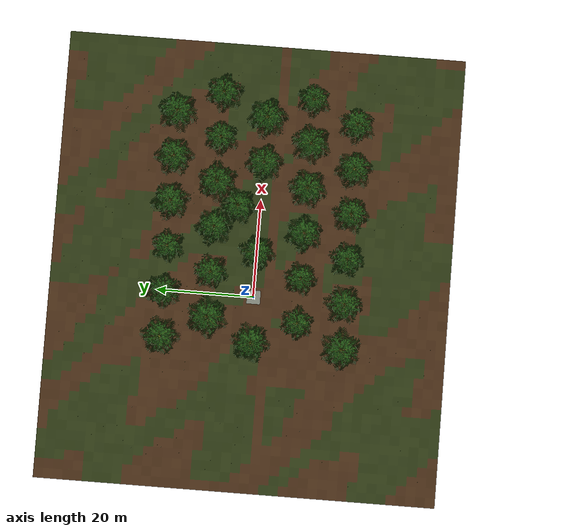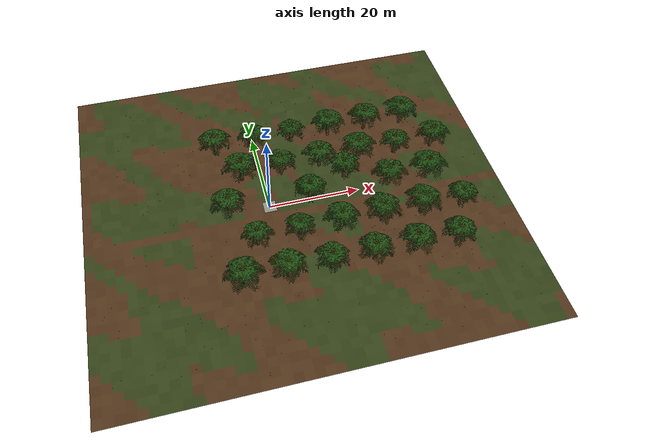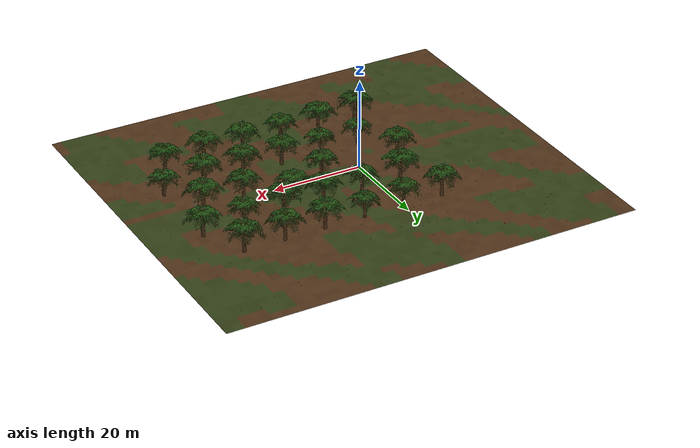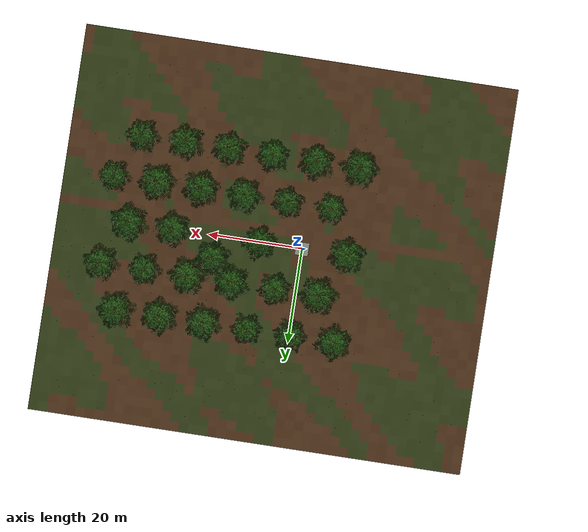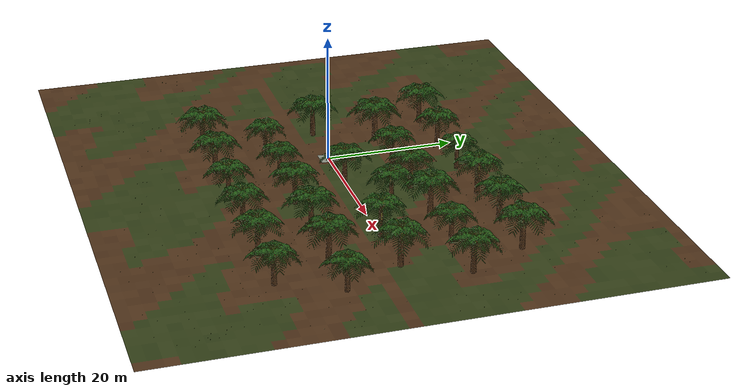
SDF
<sdf version="1.9">
 <world name="polinasi_palm_farm">
  <physics name="1ms" type="ignore">
   <max_step_size>.001</max_step_size>
   <real_time_factor>1</real_time_factor>
  </physics>
  <plugin filename="gz-sim-physics-system" name="gz::sim::systems::Physics"/>
  <plugin filename="gz-sim-sensors-system" name="gz::sim::systems::Sensors">
   <render_engine>ogre2</render_engine>
  </plugin>
  <plugin filename="gz-sim-imu-system" name="gz::sim::systems::Imu"/>
  <plugin filename="gz-sim-user-commands-system" name="gz::sim::systems::UserCommands"/>
  <plugin filename="gz-sim-scene-broadcaster-system" name="gz::sim::systems::SceneBroadcaster"/>
  <scene><ambient>.55 .55 .55 1</ambient><background>.58 .76 .91 1</background><shadows>true</shadows></scene>
  <light name="tropical_sun" type="directional">
   <pose>0 0 30 0 0 0</pose>
   <diffuse>.95 .91 .82 1</diffuse>
   <specular>.15 .15 .15 1</specular>
   <direction>-.4 -.35 -1</direction>
  </light>
  <model name="soil_and_grass">
   <static>true</static>
   <link name="surface">
    <visual name="visual">
     <geometry><mesh><uri>model://palm_farm/meshes/ground.dae</uri><scale>1.0 1.0 1.0</scale></mesh></geometry>
    </visual>
    <collision name="collision">
     <geometry><mesh><uri>model://palm_farm/meshes/ground.dae</uri><scale>1.0 1.0 1.0</scale></mesh></geometry>
    </collision>
    <collision name="solid_ground">
     <pose>5 0 -0.25 0 0 0</pose>
     <geometry><box><size>92 82 0.5</size></box></geometry>
    </collision>
   </link>
  </model>
  <model name="oil_palm_00">
   <static>true</static>
   <pose>9.0 0.0 0 0 0 -0.74757</pose>
   <link name="surface">
    <visual name="visual">
     <geometry><mesh><uri>model://palm_farm/meshes/palm.dae</uri><scale>1.0 1.0 1.0</scale></mesh></geometry>
    </visual>
    <collision name="collision">
     <geometry><mesh><uri>model://palm_farm/meshes/palm.dae</uri><scale>1.0 1.0 1.0</scale></mesh></geometry>
    </collision>
   </link>
  </model>
  <model name="oil_palm_01">
   <static>true</static>
   <pose>18.0 4.5 0 0 0 -1.69194</pose>
   <link name="surface">
    <visual name="visual">
     <geometry><mesh><uri>model://palm_farm/meshes/palm.dae</uri><scale>1.0 1.0 1.0</scale></mesh></geometry>
    </visual>
    <collision name="collision">
     <geometry><mesh><uri>model://palm_farm/meshes/palm.dae</uri><scale>1.0 1.0 1.0</scale></mesh></geometry>
    </collision>
   </link>
  </model>
  <model name="oil_palm_02">
   <static>true</static>
   <pose>-9.0 -18.0 0 0 0 -2.09835</pose>
   <link name="surface">
    <visual name="visual">
     <geometry>
      <mesh>
       <uri>model://palm_farm/meshes/palm.dae</uri>
       <scale>1.1084583586931782 1.1084583586931782 1.1084583586931782</scale>
      </mesh>
     </geometry>
    </visual>
    <collision name="collision">
     <geometry>
      <mesh>
       <uri>model://palm_farm/meshes/palm.dae</uri>
       <scale>1.1084583586931782 1.1084583586931782 1.1084583586931782</scale>
      </mesh>
     </geometry>
    </collision>
   </link>
  </model>
  <model name="oil_palm_03">
   <static>true</static>
   <pose>0.0 -18.0 0 0 0 0.48971</pose>
   <link name="surface">
    <visual name="visual">
     <geometry>
      <mesh>
       <uri>model://palm_farm/meshes/palm.dae</uri>
       <scale>1.0525331643288167 1.0525331643288167 1.0525331643288167</scale>
      </mesh>
     </geometry>
    </visual>
    <collision name="collision">
     <geometry>
      <mesh>
       <uri>model://palm_farm/meshes/palm.dae</uri>
       <scale>1.0525331643288167 1.0525331643288167 1.0525331643288167</scale>
      </mesh>
     </geometry>
    </collision>
   </link>
  </model>
  <model name="oil_palm_04">
   <static>true</static>
   <pose>9.0 -18.0 0 0 0 0.33338</pose>
   <link name="surface">
    <visual name="visual">
     <geometry>
      <mesh>
       <uri>model://palm_farm/meshes/palm.dae</uri>
       <scale>0.9758860159888182 0.9758860159888182 0.9758860159888182</scale>
      </mesh>
     </geometry>
    </visual>
    <collision name="collision">
     <geometry>
      <mesh>
       <uri>model://palm_farm/meshes/palm.dae</uri>
       <scale>0.9758860159888182 0.9758860159888182 0.9758860159888182</scale>
      </mesh>
     </geometry>
    </collision>
   </link>
  </model>
  <model name="oil_palm_05">
   <static>true</static>
   <pose>18.0 -18.0 0 0 0 1.45534</pose>
   <link name="surface">
    <visual name="visual">
     <geometry>
      <mesh>
       <uri>model://palm_farm/meshes/palm.dae</uri>
       <scale>1.0241069897437993 1.0241069897437993 1.0241069897437993</scale>
      </mesh>
     </geometry>
    </visual>
    <collision name="collision">
     <geometry>
      <mesh>
       <uri>model://palm_farm/meshes/palm.dae</uri>
       <scale>1.0241069897437993 1.0241069897437993 1.0241069897437993</scale>
      </mesh>
     </geometry>
    </collision>
   </link>
  </model>
  <model name="oil_palm_06">
   <static>true</static>
   <pose>27.0 -18.0 0 0 0 1.76689</pose>
   <link name="surface">
    <visual name="visual">
     <geometry>
      <mesh>
       <uri>model://palm_farm/meshes/palm.dae</uri>
       <scale>1.0453952430893554 1.0453952430893554 1.0453952430893554</scale>
      </mesh>
     </geometry>
    </visual>
    <collision name="collision">
     <geometry>
      <mesh>
       <uri>model://palm_farm/meshes/palm.dae</uri>
       <scale>1.0453952430893554 1.0453952430893554 1.0453952430893554</scale>
      </mesh>
     </geometry>
    </collision>
   </link>
  </model>
  <model name="oil_palm_07">
   <static>true</static>
   <pose>36.0 -18.0 0 0 0 2.13187</pose>
   <link name="surface">
    <visual name="visual">
     <geometry>
      <mesh>
       <uri>model://palm_farm/meshes/palm.dae</uri>
       <scale>0.9898486277252518 0.9898486277252518 0.9898486277252518</scale>
      </mesh>
     </geometry>
    </visual>
    <collision name="collision">
     <geometry>
      <mesh>
       <uri>model://palm_farm/meshes/palm.dae</uri>
       <scale>0.9898486277252518 0.9898486277252518 0.9898486277252518</scale>
      </mesh>
     </geometry>
    </collision>
   </link>
  </model>
  <model name="oil_palm_08">
   <static>true</static>
   <pose>-4.5 -9.0 0 0 0 -2.16739</pose>
   <link name="surface">
    <visual name="visual">
     <geometry>
      <mesh>
       <uri>model://palm_farm/meshes/palm.dae</uri>
       <scale>0.9174587643518503 0.9174587643518503 0.9174587643518503</scale>
      </mesh>
     </geometry>
    </visual>
    <collision name="collision">
     <geometry>
      <mesh>
       <uri>model://palm_farm/meshes/palm.dae</uri>
       <scale>0.9174587643518503 0.9174587643518503 0.9174587643518503</scale>
      </mesh>
     </geometry>
    </collision>
   </link>
  </model>
  <model name="oil_palm_09">
   <static>true</static>
   <pose>4.5 -9.0 0 0 0 1.40222</pose>
   <link name="surface">
    <visual name="visual">
     <geometry>
      <mesh>
       <uri>model://palm_farm/meshes/palm.dae</uri>
       <scale>0.9218776949076226 0.9218776949076226 0.9218776949076226</scale>
      </mesh>
     </geometry>
    </visual>
    <collision name="collision">
     <geometry>
      <mesh>
       <uri>model://palm_farm/meshes/palm.dae</uri>
       <scale>0.9218776949076226 0.9218776949076226 0.9218776949076226</scale>
      </mesh>
     </geometry>
    </collision>
   </link>
  </model>
  <model name="oil_palm_10">
   <static>true</static>
   <pose>13.5 -9.0 0 0 0 0.97173</pose>
   <link name="surface">
    <visual name="visual">
     <geometry>
      <mesh>
       <uri>model://palm_farm/meshes/palm.dae</uri>
       <scale>1.0351933597471328 1.0351933597471328 1.0351933597471328</scale>
      </mesh>
     </geometry>
    </visual>
    <collision name="collision">
     <geometry>
      <mesh>
       <uri>model://palm_farm/meshes/palm.dae</uri>
       <scale>1.0351933597471328 1.0351933597471328 1.0351933597471328</scale>
      </mesh>
     </geometry>
    </collision>
   </link>
  </model>
  <model name="oil_palm_11">
   <static>true</static>
   <pose>22.5 -9.0 0 0 0 -2.76775</pose>
   <link name="surface">
    <visual name="visual">
     <geometry>
      <mesh>
       <uri>model://palm_farm/meshes/palm.dae</uri>
       <scale>1.0760785753796913 1.0760785753796913 1.0760785753796913</scale>
      </mesh>
     </geometry>
    </visual>
    <collision name="collision">
     <geometry>
      <mesh>
       <uri>model://palm_farm/meshes/palm.dae</uri>
       <scale>1.0760785753796913 1.0760785753796913 1.0760785753796913</scale>
      </mesh>
     </geometry>
    </collision>
   </link>
  </model>
  <model name="oil_palm_12">
   <static>true</static>
   <pose>31.5 -9.0 0 0 0 -2.93421</pose>
   <link name="surface">
    <visual name="visual">
     <geometry>
      <mesh>
       <uri>model://palm_farm/meshes/palm.dae</uri>
       <scale>1.0967229247872456 1.0967229247872456 1.0967229247872456</scale>
      </mesh>
     </geometry>
    </visual>
    <collision name="collision">
     <geometry>
      <mesh>
       <uri>model://palm_farm/meshes/palm.dae</uri>
       <scale>1.0967229247872456 1.0967229247872456 1.0967229247872456</scale>
      </mesh>
     </geometry>
    </collision>
   </link>
  </model>
  <model name="oil_palm_13">
   <static>true</static>
   <pose>40.5 -9.0 0 0 0 2.14285</pose>
   <link name="surface">
    <visual name="visual">
     <geometry>
      <mesh>
       <uri>model://palm_farm/meshes/palm.dae</uri>
       <scale>0.933968336568619 0.933968336568619 0.933968336568619</scale>
      </mesh>
     </geometry>
    </visual>
    <collision name="collision">
     <geometry>
      <mesh>
       <uri>model://palm_farm/meshes/palm.dae</uri>
       <scale>0.933968336568619 0.933968336568619 0.933968336568619</scale>
      </mesh>
     </geometry>
    </collision>
   </link>
  </model>
  <model name="oil_palm_14">
   <static>true</static>
   <pose>-9.0 0.0 0 0 0 1.42150</pose>
   <link name="surface">
    <visual name="visual">
     <geometry>
      <mesh>
       <uri>model://palm_farm/meshes/palm.dae</uri>
       <scale>1.0630850289672342 1.0630850289672342 1.0630850289672342</scale>
      </mesh>
     </geometry>
    </visual>
    <collision name="collision">
     <geometry>
      <mesh>
       <uri>model://palm_farm/meshes/palm.dae</uri>
       <scale>1.0630850289672342 1.0630850289672342 1.0630850289672342</scale>
      </mesh>
     </geometry>
    </collision>
   </link>
  </model>
  <model name="oil_palm_15">
   <static>true</static>
   <pose>27.0 0.0 0 0 0 -2.35617</pose>
   <link name="surface">
    <visual name="visual">
     <geometry>
      <mesh>
       <uri>model://palm_farm/meshes/palm.dae</uri>
       <scale>1.0474880758273186 1.0474880758273186 1.0474880758273186</scale>
      </mesh>
     </geometry>
    </visual>
    <collision name="collision">
     <geometry>
      <mesh>
       <uri>model://palm_farm/meshes/palm.dae</uri>
       <scale>1.0474880758273186 1.0474880758273186 1.0474880758273186</scale>
      </mesh>
     </geometry>
    </collision>
   </link>
  </model>
  <model name="oil_palm_16">
   <static>true</static>
   <pose>36.0 0.0 0 0 0 -2.36394</pose>
   <link name="surface">
    <visual name="visual">
     <geometry>
      <mesh>
       <uri>model://palm_farm/meshes/palm.dae</uri>
       <scale>1.108305392234751 1.108305392234751 1.108305392234751</scale>
      </mesh>
     </geometry>
    </visual>
    <collision name="collision">
     <geometry>
      <mesh>
       <uri>model://palm_farm/meshes/palm.dae</uri>
       <scale>1.108305392234751 1.108305392234751 1.108305392234751</scale>
      </mesh>
     </geometry>
    </collision>
   </link>
  </model>
  <model name="oil_palm_17">
   <static>true</static>
   <pose>-4.5 9.0 0 0 0 1.18659</pose>
   <link name="surface">
    <visual name="visual">
     <geometry>
      <mesh>
       <uri>model://palm_farm/meshes/palm.dae</uri>
       <scale>1.1250012325825964 1.1250012325825964 1.1250012325825964</scale>
      </mesh>
     </geometry>
    </visual>
    <collision name="collision">
     <geometry>
      <mesh>
       <uri>model://palm_farm/meshes/palm.dae</uri>
       <scale>1.1250012325825964 1.1250012325825964 1.1250012325825964</scale>
      </mesh>
     </geometry>
    </collision>
   </link>
  </model>
  <model name="oil_palm_18">
   <static>true</static>
   <pose>4.5 9.0 0 0 0 -2.80526</pose>
   <link name="surface">
    <visual name="visual">
     <geometry>
      <mesh>
       <uri>model://palm_farm/meshes/palm.dae</uri>
       <scale>0.9594500563765269 0.9594500563765269 0.9594500563765269</scale>
      </mesh>
     </geometry>
    </visual>
    <collision name="collision">
     <geometry>
      <mesh>
       <uri>model://palm_farm/meshes/palm.dae</uri>
       <scale>0.9594500563765269 0.9594500563765269 0.9594500563765269</scale>
      </mesh>
     </geometry>
    </collision>
   </link>
  </model>
  <model name="oil_palm_19">
   <static>true</static>
   <pose>13.5 9.0 0 0 0 0.75335</pose>
   <link name="surface">
    <visual name="visual">
     <geometry>
      <mesh>
       <uri>model://palm_farm/meshes/palm.dae</uri>
       <scale>1.0320516734156546 1.0320516734156546 1.0320516734156546</scale>
      </mesh>
     </geometry>
    </visual>
    <collision name="collision">
     <geometry>
      <mesh>
       <uri>model://palm_farm/meshes/palm.dae</uri>
       <scale>1.0320516734156546 1.0320516734156546 1.0320516734156546</scale>
      </mesh>
     </geometry>
    </collision>
   </link>
  </model>
  <model name="oil_palm_20">
   <static>true</static>
   <pose>22.5 9.0 0 0 0 -1.99748</pose>
   <link name="surface">
    <visual name="visual">
     <geometry>
      <mesh>
       <uri>model://palm_farm/meshes/palm.dae</uri>
       <scale>1.1019450805273103 1.1019450805273103 1.1019450805273103</scale>
      </mesh>
     </geometry>
    </visual>
    <collision name="collision">
     <geometry>
      <mesh>
       <uri>model://palm_farm/meshes/palm.dae</uri>
       <scale>1.1019450805273103 1.1019450805273103 1.1019450805273103</scale>
      </mesh>
     </geometry>
    </collision>
   </link>
  </model>
  <model name="oil_palm_21">
   <static>true</static>
   <pose>31.5 9.0 0 0 0 2.17730</pose>
   <link name="surface">
    <visual name="visual">
     <geometry>
      <mesh>
       <uri>model://palm_farm/meshes/palm.dae</uri>
       <scale>0.9553540739406883 0.9553540739406883 0.9553540739406883</scale>
      </mesh>
     </geometry>
    </visual>
    <collision name="collision">
     <geometry>
      <mesh>
       <uri>model://palm_farm/meshes/palm.dae</uri>
       <scale>0.9553540739406883 0.9553540739406883 0.9553540739406883</scale>
      </mesh>
     </geometry>
    </collision>
   </link>
  </model>
  <model name="oil_palm_22">
   <static>true</static>
   <pose>40.5 9.0 0 0 0 -2.22483</pose>
   <link name="surface">
    <visual name="visual">
     <geometry>
      <mesh>
       <uri>model://palm_farm/meshes/palm.dae</uri>
       <scale>1.0469147984935336 1.0469147984935336 1.0469147984935336</scale>
      </mesh>
     </geometry>
    </visual>
    <collision name="collision">
     <geometry>
      <mesh>
       <uri>model://palm_farm/meshes/palm.dae</uri>
       <scale>1.0469147984935336 1.0469147984935336 1.0469147984935336</scale>
      </mesh>
     </geometry>
    </collision>
   </link>
  </model>
  <model name="oil_palm_23">
   <static>true</static>
   <pose>-9.0 18.0 0 0 0 -0.58314</pose>
   <link name="surface">
    <visual name="visual">
     <geometry>
      <mesh>
       <uri>model://palm_farm/meshes/palm.dae</uri>
       <scale>1.045834944055387 1.045834944055387 1.045834944055387</scale>
      </mesh>
     </geometry>
    </visual>
    <collision name="collision">
     <geometry>
      <mesh>
       <uri>model://palm_farm/meshes/palm.dae</uri>
       <scale>1.045834944055387 1.045834944055387 1.045834944055387</scale>
      </mesh>
     </geometry>
    </collision>
   </link>
  </model>
  <model name="oil_palm_24">
   <static>true</static>
   <pose>0.0 18.0 0 0 0 -0.04232</pose>
   <link name="surface">
    <visual name="visual">
     <geometry>
      <mesh>
       <uri>model://palm_farm/meshes/palm.dae</uri>
       <scale>0.9787061154663623 0.9787061154663623 0.9787061154663623</scale>
      </mesh>
     </geometry>
    </visual>
    <collision name="collision">
     <geometry>
      <mesh>
       <uri>model://palm_farm/meshes/palm.dae</uri>
       <scale>0.9787061154663623 0.9787061154663623 0.9787061154663623</scale>
      </mesh>
     </geometry>
    </collision>
   </link>
  </model>
  <model name="oil_palm_25">
   <static>true</static>
   <pose>9.0 18.0 0 0 0 -3.00547</pose>
   <link name="surface">
    <visual name="visual">
     <geometry>
      <mesh>
       <uri>model://palm_farm/meshes/palm.dae</uri>
       <scale>0.9137373187353219 0.9137373187353219 0.9137373187353219</scale>
      </mesh>
     </geometry>
    </visual>
    <collision name="collision">
     <geometry>
      <mesh>
       <uri>model://palm_farm/meshes/palm.dae</uri>
       <scale>0.9137373187353219 0.9137373187353219 0.9137373187353219</scale>
      </mesh>
     </geometry>
    </collision>
   </link>
  </model>
  <model name="oil_palm_26">
   <static>true</static>
   <pose>18.0 18.0 0 0 0 -0.26127</pose>
   <link name="surface">
    <visual name="visual">
     <geometry>
      <mesh>
       <uri>model://palm_farm/meshes/palm.dae</uri>
       <scale>1.0620530619506585 1.0620530619506585 1.0620530619506585</scale>
      </mesh>
     </geometry>
    </visual>
    <collision name="collision">
     <geometry>
      <mesh>
       <uri>model://palm_farm/meshes/palm.dae</uri>
       <scale>1.0620530619506585 1.0620530619506585 1.0620530619506585</scale>
      </mesh>
     </geometry>
    </collision>
   </link>
  </model>
  <model name="oil_palm_27">
   <static>true</static>
   <pose>27.0 18.0 0 0 0 -0.46706</pose>
   <link name="surface">
    <visual name="visual">
     <geometry>
      <mesh>
       <uri>model://palm_farm/meshes/palm.dae</uri>
       <scale>1.0661104094977416 1.0661104094977416 1.0661104094977416</scale>
      </mesh>
     </geometry>
    </visual>
    <collision name="collision">
     <geometry>
      <mesh>
       <uri>model://palm_farm/meshes/palm.dae</uri>
       <scale>1.0661104094977416 1.0661104094977416 1.0661104094977416</scale>
      </mesh>
     </geometry>
    </collision>
   </link>
  </model>
  <model name="oil_palm_28">
   <static>true</static>
   <pose>36.0 18.0 0 0 0 0.24999</pose>
   <link name="surface">
    <visual name="visual">
     <geometry>
      <mesh>
       <uri>model://palm_farm/meshes/palm.dae</uri>
       <scale>1.100088139202908 1.100088139202908 1.100088139202908</scale>
      </mesh>
     </geometry>
    </visual>
    <collision name="collision">
     <geometry>
      <mesh>
       <uri>model://palm_farm/meshes/palm.dae</uri>
       <scale>1.100088139202908 1.100088139202908 1.100088139202908</scale>
      </mesh>
     </geometry>
    </collision>
   </link>
  </model>
  <model name="launch_pad">
   <static>true</static>
   <link name="pad">
    <visual name="visual">
     <pose>0 0 .006 0 0 0</pose>
     <geometry><box><size>2.8 2.8 .012</size></box></geometry>
     <material><ambient>.35 .37 .34 1</ambient><diffuse>.55 .57 .52 1</diffuse></material>
    </visual>
    <collision name="collision">
     <pose>0 0 .006 0 0 0</pose>
     <geometry><box><size>2.8 2.8 .012</size></box></geometry>
    </collision>
   </link>
  </model>
 </world>
</sdf>
